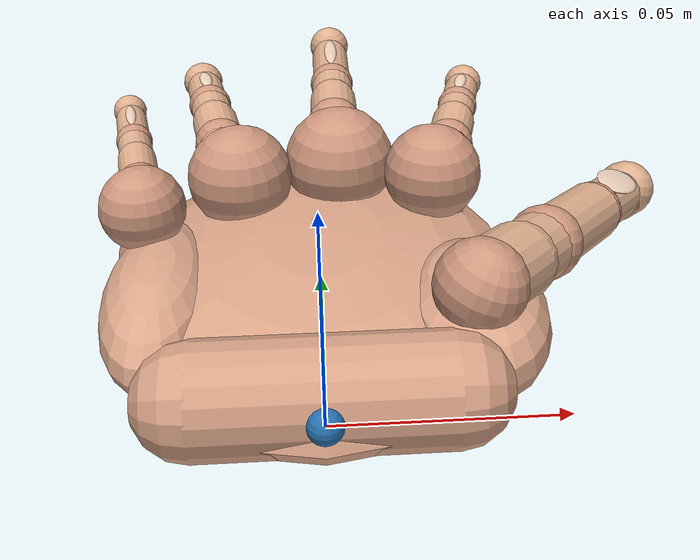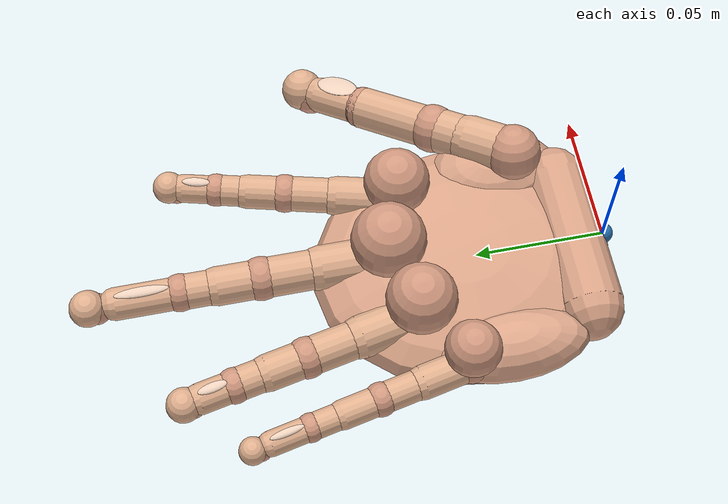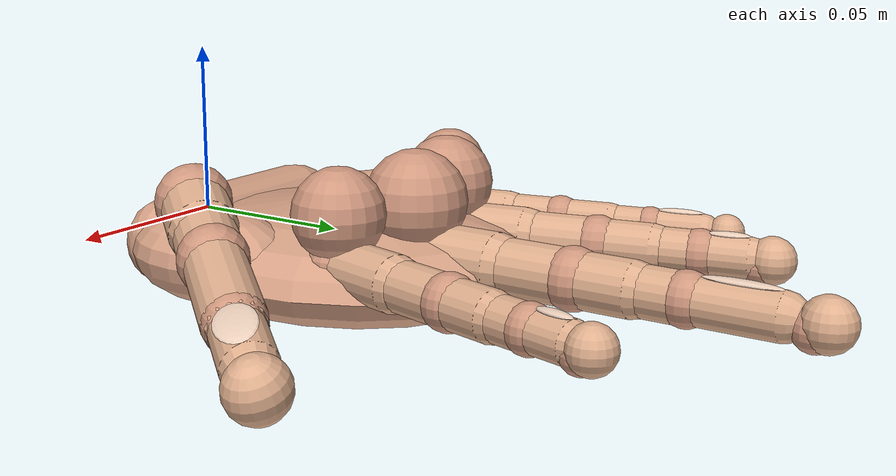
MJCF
<?xml version="1.0" ?>
<mujoco model="human_full_hand">
  <compiler angle="degree" autolimits="true"/>
  <option timestep="0.002" gravity="0 0 0"/>
  <visual>
    <global offwidth="1280" offheight="960"/>
  </visual>
  <default>
    <joint type="hinge" limited="true" damping="0.02" armature="0.0001"/>
    <geom type="capsule" size="0.006" rgba="0.76 0.82 0.88 0.55" contype="0" conaffinity="0"/>
    <site type="sphere" size="0.004" rgba="0.10 0.55 0.45 1"/>
  </default>
  <worldbody>
    <body name="wrist" pos="0 0 0">
      <geom name="palm_plate" type="ellipsoid" rgba="0.85 0.64 0.53 1" group="2" contype="0" conaffinity="0" size="0.05 0.058 0.016" pos="0 0.055 -0.006"/>
      <geom name="thenar_bulge" type="ellipsoid" rgba="0.86 0.65 0.54 1" group="2" contype="0" conaffinity="0" size="0.018 0.026 0.013" pos="0.035 0.035 -0.002"/>
      <geom name="hypothenar_bulge" type="ellipsoid" rgba="0.86 0.65 0.54 1" group="2" contype="0" conaffinity="0" size="0.014 0.03 0.012" pos="-0.038 0.045 -0.002"/>
      <geom name="palm_heel" type="capsule" rgba="0.85 0.64 0.53 1" group="2" contype="0" conaffinity="0" size="0.013" fromto="-0.028 0.012 -0.003 0.028 0.012 -0.003"/>
      <geom name="dorsal_index_knuckle" type="sphere" rgba="0.82 0.60 0.50 1" group="2" contype="0" conaffinity="0" size="0.0127008" pos="0.03 0.075 0.014"/>
      <geom name="dorsal_middle_knuckle" type="sphere" rgba="0.82 0.60 0.50 1" group="2" contype="0" conaffinity="0" size="0.014406" pos="0.006 0.083 0.014"/>
      <geom name="dorsal_ring_knuckle" type="sphere" rgba="0.82 0.60 0.50 1" group="2" contype="0" conaffinity="0" size="0.0134358" pos="-0.02 0.076 0.014"/>
      <geom name="dorsal_pinky_knuckle" type="sphere" rgba="0.82 0.60 0.50 1" group="2" contype="0" conaffinity="0" size="0.0106134" pos="-0.043 0.062 0.014"/>
      <site name="wrist" pos="0 0 0" rgba="0.15 0.45 0.70 1"/>
      <body name="index_mcp" pos="0.03 0.075 0" euler="0 0 -14.2666">
        <joint name="index_mcp_abd" axis="0 0 -1" range="-20.002 20.002"/>
        <inertial pos="0 0 0" mass="0.001" diaginertia="1e-06 1e-06 1e-06"/>
        <body name="index_mcp_flex_body" pos="0 0 0">
          <joint name="index_mcp_flex" axis="-1 0 0" range="0 90.0002"/>
          <site name="index_mcp" pos="0 0 0"/>
          <geom name="index_mcp_knuckle" type="sphere" rgba="0.82 0.60 0.50 1" group="2" contype="0" conaffinity="0" size="0.009072" pos="0 0 0"/>
          <geom name="index_prox_thick" type="capsule" rgba="0.88 0.69 0.56 1" group="2" contype="0" conaffinity="0" size="0.007776" fromto="0 0 0 0 0.0231 0"/>
          <geom name="index_prox_thin" type="capsule" rgba="0.88 0.69 0.56 1" group="2" contype="0" conaffinity="0" size="0.006912" fromto="0 0.0201 0 0 0.0432 0"/>
          <body name="index_pip_body" pos="0 0.0432 0">
            <joint name="index_pip" axis="-1 0 0" range="0 99.9983"/>
            <site name="index_pip" pos="0 0 0"/>
            <geom name="index_pip_knuckle" type="sphere" rgba="0.82 0.60 0.50 1" group="2" contype="0" conaffinity="0" size="0.00756" pos="0 0 0"/>
            <geom name="index_mid_thick" type="capsule" rgba="0.88 0.69 0.56 1" group="2" contype="0" conaffinity="0" size="0.006696" fromto="0 0 0 0 0.01495 0"/>
            <geom name="index_mid_thin" type="capsule" rgba="0.88 0.69 0.56 1" group="2" contype="0" conaffinity="0" size="0.006048" fromto="0 0.01195 0 0 0.0269 0"/>
            <body name="index_dip_body" pos="0 0.0269 0">
              <joint name="index_dip" axis="-1 0 0" range="0 80.0021"/>
              <site name="index_dip" pos="0 0 0"/>
              <geom name="index_dip_knuckle" type="sphere" rgba="0.82 0.60 0.50 1" group="2" contype="0" conaffinity="0" size="0.00648" pos="0 0 0"/>
              <geom name="index_dist_shaft" type="capsule" rgba="0.88 0.69 0.56 1" group="2" contype="0" conaffinity="0" size="0.005616" fromto="0 0 0 0 0.01309 0"/>
              <geom name="index_tip_bulb" type="sphere" rgba="0.88 0.69 0.56 1" group="2" contype="0" conaffinity="0" size="0.006264" pos="0 0.0187 0"/>
              <geom name="index_pad" type="sphere" rgba="0.85 0.62 0.52 1" group="2" contype="0" conaffinity="0" size="0.0054" pos="0 0.0157 -0.0015"/>
              <geom name="index_nail" type="ellipsoid" rgba="0.93 0.82 0.74 1" group="2" contype="0" conaffinity="0" size="0.0018792 0.00561 0.0009" pos="0 0.00748 0.005616"/>
              <site name="index_tip" pos="0 0.0187 0"/>
            </body>
          </body>
        </body>
      </body>
      <body name="middle_mcp" pos="0.006 0.083 0" euler="0 0 0">
        <joint name="middle_mcp_abd" axis="0 0 -1" range="-20.002 20.002"/>
        <inertial pos="0 0 0" mass="0.001" diaginertia="1e-06 1e-06 1e-06"/>
        <body name="middle_mcp_flex_body" pos="0 0 0">
          <joint name="middle_mcp_flex" axis="-1 0 0" range="0 90.0002"/>
          <site name="middle_mcp" pos="0 0 0"/>
          <geom name="middle_mcp_knuckle" type="sphere" rgba="0.82 0.60 0.50 1" group="2" contype="0" conaffinity="0" size="0.01029" pos="0 0 0"/>
          <geom name="middle_prox_thick" type="capsule" rgba="0.88 0.69 0.56 1" group="2" contype="0" conaffinity="0" size="0.00882" fromto="0 0 0 0 0.026 0"/>
          <geom name="middle_prox_thin" type="capsule" rgba="0.88 0.69 0.56 1" group="2" contype="0" conaffinity="0" size="0.00784" fromto="0 0.023 0 0 0.049 0"/>
          <body name="middle_pip_body" pos="0 0.049 0">
            <joint name="middle_pip" axis="-1 0 0" range="0 99.9983"/>
            <site name="middle_pip" pos="0 0 0"/>
            <geom name="middle_pip_knuckle" type="sphere" rgba="0.82 0.60 0.50 1" group="2" contype="0" conaffinity="0" size="0.008575" pos="0 0 0"/>
            <geom name="middle_mid_thick" type="capsule" rgba="0.88 0.69 0.56 1" group="2" contype="0" conaffinity="0" size="0.007595" fromto="0 0 0 0 0.017 0"/>
            <geom name="middle_mid_thin" type="capsule" rgba="0.88 0.69 0.56 1" group="2" contype="0" conaffinity="0" size="0.00686" fromto="0 0.014 0 0 0.031 0"/>
            <body name="middle_dip_body" pos="0 0.031 0">
              <joint name="middle_dip" axis="-1 0 0" range="0 80.0021"/>
              <site name="middle_dip" pos="0 0 0"/>
              <geom name="middle_dip_knuckle" type="sphere" rgba="0.82 0.60 0.50 1" group="2" contype="0" conaffinity="0" size="0.00735" pos="0 0 0"/>
              <geom name="middle_dist_shaft" type="capsule" rgba="0.88 0.69 0.56 1" group="2" contype="0" conaffinity="0" size="0.00637" fromto="0 0 0 0 0.0245 0"/>
              <geom name="middle_tip_bulb" type="sphere" rgba="0.88 0.69 0.56 1" group="2" contype="0" conaffinity="0" size="0.007105" pos="0 0.035 0"/>
              <geom name="middle_pad" type="sphere" rgba="0.85 0.62 0.52 1" group="2" contype="0" conaffinity="0" size="0.006125" pos="0 0.032 -0.0015"/>
              <geom name="middle_nail" type="ellipsoid" rgba="0.93 0.82 0.74 1" group="2" contype="0" conaffinity="0" size="0.0021315 0.0105 0.0009" pos="0 0.014 0.00637"/>
              <site name="middle_tip" pos="0 0.035 0"/>
            </body>
          </body>
        </body>
      </body>
      <body name="ring_mcp" pos="-0.02 0.076 0" euler="0 0 11.6883">
        <joint name="ring_mcp_abd" axis="0 0 -1" range="-20.002 20.002"/>
        <inertial pos="0 0 0" mass="0.001" diaginertia="1e-06 1e-06 1e-06"/>
        <body name="ring_mcp_flex_body" pos="0 0 0">
          <joint name="ring_mcp_flex" axis="-1 0 0" range="0 90.0002"/>
          <site name="ring_mcp" pos="0 0 0"/>
          <geom name="ring_mcp_knuckle" type="sphere" rgba="0.82 0.60 0.50 1" group="2" contype="0" conaffinity="0" size="0.009597" pos="0 0 0"/>
          <geom name="ring_prox_thick" type="capsule" rgba="0.88 0.69 0.56 1" group="2" contype="0" conaffinity="0" size="0.008226" fromto="0 0 0 0 0.02435 0"/>
          <geom name="ring_prox_thin" type="capsule" rgba="0.88 0.69 0.56 1" group="2" contype="0" conaffinity="0" size="0.007312" fromto="0 0.02135 0 0 0.0457 0"/>
          <body name="ring_pip_body" pos="0 0.0457 0">
            <joint name="ring_pip" axis="-1 0 0" range="0 99.9983"/>
            <site name="ring_pip" pos="0 0 0"/>
            <geom name="ring_pip_knuckle" type="sphere" rgba="0.82 0.60 0.50 1" group="2" contype="0" conaffinity="0" size="0.0079975" pos="0 0 0"/>
            <geom name="ring_mid_thick" type="capsule" rgba="0.88 0.69 0.56 1" group="2" contype="0" conaffinity="0" size="0.0070835" fromto="0 0 0 0 0.0158 0"/>
            <geom name="ring_mid_thin" type="capsule" rgba="0.88 0.69 0.56 1" group="2" contype="0" conaffinity="0" size="0.006398" fromto="0 0.0128 0 0 0.0286 0"/>
            <body name="ring_dip_body" pos="0 0.0286 0">
              <joint name="ring_dip" axis="-1 0 0" range="0 80.0021"/>
              <site name="ring_dip" pos="0 0 0"/>
              <geom name="ring_dip_knuckle" type="sphere" rgba="0.82 0.60 0.50 1" group="2" contype="0" conaffinity="0" size="0.006855" pos="0 0 0"/>
              <geom name="ring_dist_shaft" type="capsule" rgba="0.88 0.69 0.56 1" group="2" contype="0" conaffinity="0" size="0.005941" fromto="0 0 0 0 0.01372 0"/>
              <geom name="ring_tip_bulb" type="sphere" rgba="0.88 0.69 0.56 1" group="2" contype="0" conaffinity="0" size="0.0066265" pos="0 0.0196 0"/>
              <geom name="ring_pad" type="sphere" rgba="0.85 0.62 0.52 1" group="2" contype="0" conaffinity="0" size="0.0057125" pos="0 0.0166 -0.0015"/>
              <geom name="ring_nail" type="ellipsoid" rgba="0.93 0.82 0.74 1" group="2" contype="0" conaffinity="0" size="0.00198795 0.00588 0.0009" pos="0 0.00784 0.005941"/>
              <site name="ring_tip" pos="0 0.0196 0"/>
            </body>
          </body>
        </body>
      </body>
      <body name="pinky_mcp" pos="-0.043 0.062 0" euler="0 0 12.0894">
        <joint name="pinky_mcp_abd" axis="0 0 -1" range="-20.002 20.002"/>
        <inertial pos="0 0 0" mass="0.001" diaginertia="1e-06 1e-06 1e-06"/>
        <body name="pinky_mcp_flex_body" pos="0 0 0">
          <joint name="pinky_mcp_flex" axis="-1 0 0" range="0 90.0002"/>
          <site name="pinky_mcp" pos="0 0 0"/>
          <geom name="pinky_mcp_knuckle" type="sphere" rgba="0.82 0.60 0.50 1" group="2" contype="0" conaffinity="0" size="0.007581" pos="0 0 0"/>
          <geom name="pinky_prox_thick" type="capsule" rgba="0.88 0.69 0.56 1" group="2" contype="0" conaffinity="0" size="0.0065" fromto="0 0 0 0 0.01955 0"/>
          <geom name="pinky_prox_thin" type="capsule" rgba="0.88 0.69 0.56 1" group="2" contype="0" conaffinity="0" size="0.0058" fromto="0 0.01655 0 0 0.0361 0"/>
          <body name="pinky_pip_body" pos="0 0.0361 0">
            <joint name="pinky_pip" axis="-1 0 0" range="0 99.9983"/>
            <site name="pinky_pip" pos="0 0 0"/>
            <geom name="pinky_pip_knuckle" type="sphere" rgba="0.82 0.60 0.50 1" group="2" contype="0" conaffinity="0" size="0.0065" pos="0 0 0"/>
            <geom name="pinky_mid_thick" type="capsule" rgba="0.88 0.69 0.56 1" group="2" contype="0" conaffinity="0" size="0.0055955" fromto="0 0 0 0 0.01525 0"/>
            <geom name="pinky_mid_thin" type="capsule" rgba="0.88 0.69 0.56 1" group="2" contype="0" conaffinity="0" size="0.005054" fromto="0 0.01225 0 0 0.0275 0"/>
            <body name="pinky_dip_body" pos="0 0.0275 0">
              <joint name="pinky_dip" axis="-1 0 0" range="0 80.0021"/>
              <site name="pinky_dip" pos="0 0 0"/>
              <geom name="pinky_dip_knuckle" type="sphere" rgba="0.82 0.60 0.50 1" group="2" contype="0" conaffinity="0" size="0.0055" pos="0 0 0"/>
              <geom name="pinky_dist_shaft" type="capsule" rgba="0.88 0.69 0.56 1" group="2" contype="0" conaffinity="0" size="0.0048" fromto="0 0 0 0 0.01568 0"/>
              <geom name="pinky_tip_bulb" type="sphere" rgba="0.88 0.69 0.56 1" group="2" contype="0" conaffinity="0" size="0.0052345" pos="0 0.0224 0"/>
              <geom name="pinky_pad" type="sphere" rgba="0.85 0.62 0.52 1" group="2" contype="0" conaffinity="0" size="0.0045125" pos="0 0.0194 -0.0015"/>
              <geom name="pinky_nail" type="ellipsoid" rgba="0.93 0.82 0.74 1" group="2" contype="0" conaffinity="0" size="0.00157035 0.00672 0.0009" pos="0 0.00896 0.0048"/>
              <site name="pinky_tip" pos="0 0.0224 0"/>
            </body>
          </body>
        </body>
      </body>
      <body name="thumb_cmc" pos="0.035 0.028 0.012" euler="0 20.0535 -40.107">
        <joint name="thumb_cmc_abd" axis="0 0 -1" range="-30.0001 30.0001"/>
        <inertial pos="0 0 0" mass="0.001" diaginertia="1e-06 1e-06 1e-06"/>
        <body name="thumb_cmc_flex_body" pos="0 0 0">
          <joint name="thumb_cmc_flex" axis="-1 0 0" range="-30.0001 60.0001"/>
          <site name="thumb_cmc" pos="0 0 0"/>
          <geom name="thumb_cmc_base" type="sphere" rgba="0.82 0.60 0.50 1" group="2" contype="0" conaffinity="0" size="0.01088" pos="0 0 0"/>
          <geom name="thumb_meta_thick" type="capsule" rgba="0.88 0.69 0.56 1" group="2" contype="0" conaffinity="0" size="0.0096" fromto="0 0 0 0 0.01885 0"/>
          <geom name="thumb_meta_thin" type="capsule" rgba="0.88 0.69 0.56 1" group="2" contype="0" conaffinity="0" size="0.0088" fromto="0 0.01585 0 0 0.0347 0"/>
          <body name="thumb_mcp_body" pos="0 0.0347 0">
            <joint name="thumb_mcp" axis="-1 0 0" range="-30.0001 60.0001"/>
            <site name="thumb_mcp" pos="0 0 0"/>
            <geom name="thumb_mcp_knuckle" type="sphere" rgba="0.82 0.60 0.50 1" group="2" contype="0" conaffinity="0" size="0.0096" pos="0 0 0"/>
            <geom name="thumb_prox" type="capsule" rgba="0.88 0.69 0.56 1" group="2" contype="0" conaffinity="0" size="0.00832" fromto="0 0 0 0 0.032 0"/>
            <body name="thumb_ip_body" pos="0 0.032 0">
              <joint name="thumb_ip" axis="-1 0 0" range="-30.0001 60.0001"/>
              <site name="thumb_ip" pos="0 0 0"/>
              <geom name="thumb_ip_knuckle" type="sphere" rgba="0.82 0.60 0.50 1" group="2" contype="0" conaffinity="0" size="0.00832" pos="0 0 0"/>
              <geom name="thumb_dist_shaft" type="capsule" rgba="0.88 0.69 0.56 1" group="2" contype="0" conaffinity="0" size="0.0072" fromto="0 0 0 0 0.02016 0"/>
              <geom name="thumb_tip_bulb" type="sphere" rgba="0.88 0.69 0.56 1" group="2" contype="0" conaffinity="0" size="0.00832" pos="0 0.0288 0"/>
              <geom name="thumb_pad" type="sphere" rgba="0.85 0.62 0.52 1" group="2" contype="0" conaffinity="0" size="0.0072" pos="0 0.0248 -0.002"/>
              <geom name="thumb_nail" type="ellipsoid" rgba="0.93 0.82 0.74 1" group="2" contype="0" conaffinity="0" size="0.0055 0.00864 0.001" pos="0 0.01152 0.0072"/>
              <site name="thumb_tip" pos="0 0.0288 0"/>
            </body>
          </body>
        </body>
      </body>
    </body>
  </worldbody>
  <equality>
    <joint name="index_dip_coupling" joint1="index_dip" joint2="index_pip" polycoef="0 0.6 0 0 0"/>
    <joint name="middle_dip_coupling" joint1="middle_dip" joint2="middle_pip" polycoef="0 0.6 0 0 0"/>
    <joint name="ring_dip_coupling" joint1="ring_dip" joint2="ring_pip" polycoef="0 0.6 0 0 0"/>
    <joint name="pinky_dip_coupling" joint1="pinky_dip" joint2="pinky_pip" polycoef="0 0.6 0 0 0"/>
  </equality>
  <actuator>
    <position name="index_mcp_abd_act" joint="index_mcp_abd" kp="8"/>
    <position name="index_mcp_flex_act" joint="index_mcp_flex" kp="20"/>
    <position name="index_pip_act" joint="index_pip" kp="20"/>
    <position name="middle_mcp_abd_act" joint="middle_mcp_abd" kp="8"/>
    <position name="middle_mcp_flex_act" joint="middle_mcp_flex" kp="20"/>
    <position name="middle_pip_act" joint="middle_pip" kp="20"/>
    <position name="ring_mcp_abd_act" joint="ring_mcp_abd" kp="8"/>
    <position name="ring_mcp_flex_act" joint="ring_mcp_flex" kp="20"/>
    <position name="ring_pip_act" joint="ring_pip" kp="20"/>
    <position name="pinky_mcp_abd_act" joint="pinky_mcp_abd" kp="8"/>
    <position name="pinky_mcp_flex_act" joint="pinky_mcp_flex" kp="20"/>
    <position name="pinky_pip_act" joint="pinky_pip" kp="20"/>
  </actuator>
</mujoco>
